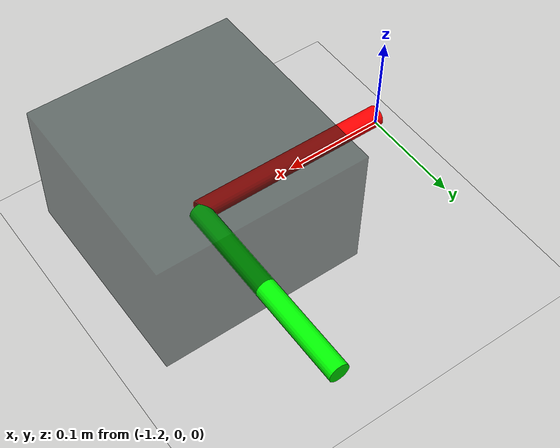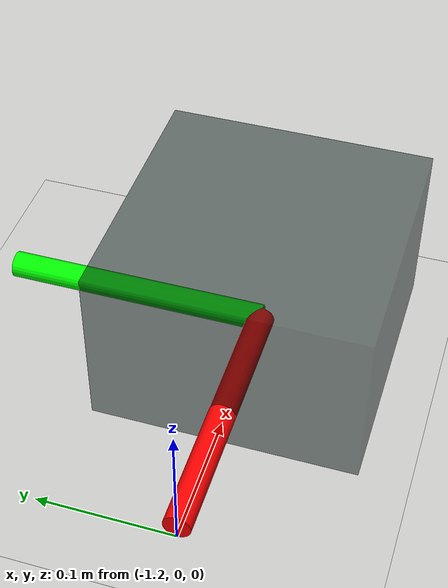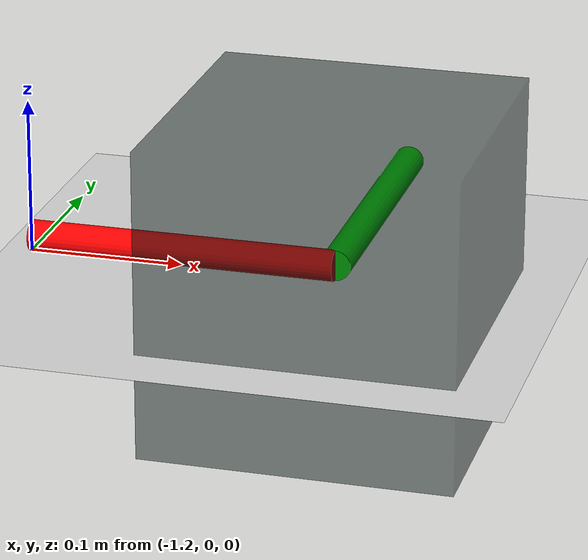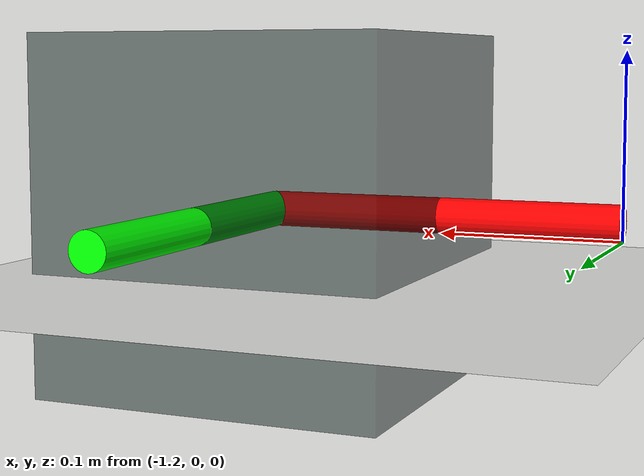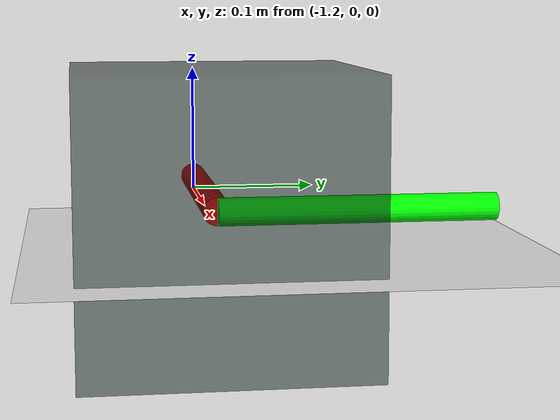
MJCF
<mujoco model="planar arm scene">

    <statistic center="0 0 0.05" extent="0.8" />

    <visual>
        <headlight diffuse="0.6 0.6 0.6" ambient="0.3 0.3 0.3" specular="0 0 0" />
        <rgba haze="0.15 0.25 0.35 1" />
        <global azimuth="120" elevation="-20" />
    </visual>

    <asset>
        <texture name="grid" type="2d" builtin="flat"
            rgb1="1 1 1" width="512" height="512" />
        <material name="grid" texture="grid" texrepeat="1 1" texuniform="true" reflectance="0" />
        <material name="uniform" texuniform="true" reflectance="0" specular="0" shininess="0" />
        <texture type="2d" name="groundplane"
            file="light-gray-floor-tile.png" />
        <material name="groundplane" texture="groundplane" reflectance="0.0" />
    </asset>

    <worldbody>
        <camera name="birdview" orthographic="true" fovy="1.5" pos="-0.494 0.001 1.981"
            xyaxes="0.001 1.000 -0.000 -1.000 0.001 0.026" />
        <camera mode="fixed" name="frontview" pos="-2.0 0. 0.2" quat="-0.5 -0.5 0.5 0.5" />
        <geom name="floor" type="plane" condim="3" size="0 0 0.050000000000000003"
            material="groundplane" pos="0 0 -0.02" />
        <light pos="0 0 1.5" dir="0 0 -1" directional="true" castshadow="false" />

        <body name="target" pos="-1.0 0 0.01">
            <geom pos="0.0 0.1 -0.0" axisangle="1 0 0 90" type="cylinder" rgba="0.0 1.0 0.0 1.0"
                size="0.01 0.10" conaffinity="0" contype="0" />
            <geom pos="-0.1 0.0 -0.0" axisangle="0 1 0 90" type="cylinder" rgba="1.0 0.0 0.0 1.0"
                size="0.01 0.10" conaffinity="0" contype="0" />
            <geom name="target" type="box" size="0.1 0.1 0.1" rgba="0 0.07 0.05 0.5"
                material="uniform" condim="4" contype="0" conaffinity="0" />
            <joint name="target:joint" type="free" />
        </body>

    </worldbody>

</mujoco>
